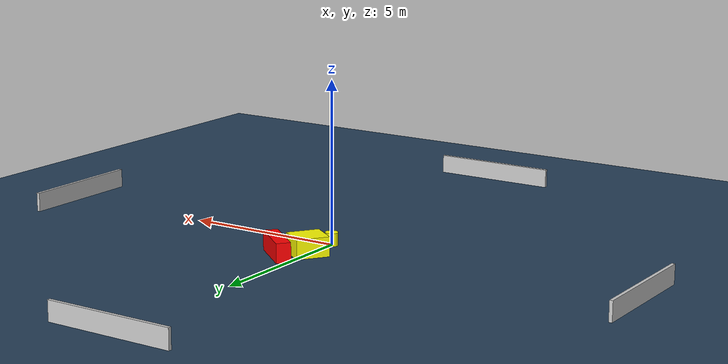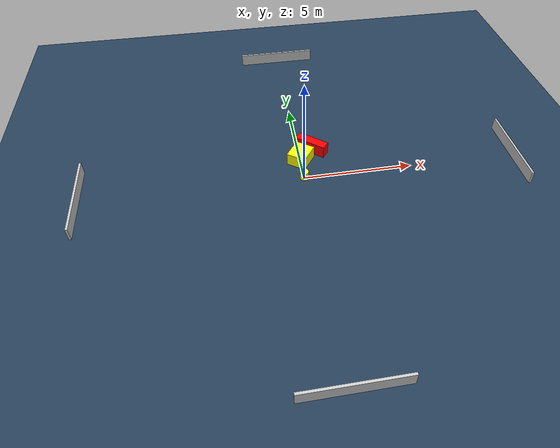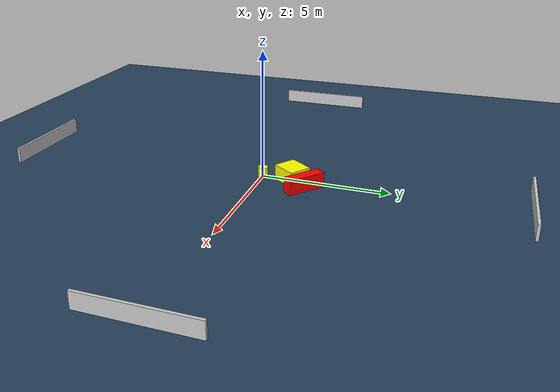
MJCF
<?xml version="1.0" ?>
<mujoco model="generated_environment">
  <option timestep="0.01" integrator="RK4" cone="elliptic"/>
  <default>
    <geom density="1"/>
  </default>
  <asset>
    <texture builtin="gradient" height="3072" name="skybox" rgb1="0.3 0.5 0.7" rgb2="0 0 0" type="skybox" width="512"/>
    <texture builtin="checker" height="300" name="groundplane" rgb1="0.2 0.3 0.4" rgb2="0.1 0.2 0.3" type="2d" width="300"/>
    <material name="groundplane" reflectance="0.2" texrepeat="5 5" texture="groundplane"/>
  </asset>
  <worldbody>
    <light dir="0 0 -1" directional="true" pos="0 0 1.5"/>
    <geom condim="3" friction="0.5 0.005 0.001" material="groundplane" name="floor" pos="0 0 0" size="0 0 0.05" type="plane"/>
    <body name="walls">
      <geom name="wall_1" condim="4" pos="-10.0 0.0 0.3" rgba="0.800000011920929 0.800000011920929 0.800000011920929 1.0" size="0.05 2.0 0.3" type="box"/>
      <geom name="wall_2" condim="4" pos="10.0 0.0 0.3" rgba="0.800000011920929 0.800000011920929 0.800000011920929 1.0" size="0.05 2.0 0.3" type="box"/>
      <geom name="wall_3" condim="4" pos="0.0 -10.0 0.3" rgba="0.800000011920929 0.800000011920929 0.800000011920929 1.0" size="2.0 0.05 0.3" type="box"/>
      <geom name="wall_4" condim="4" pos="0.0 10.0 0.3" rgba="0.800000011920929 0.800000011920929 0.800000011920929 1.0" size="2.0 0.05 0.3" type="box"/>
    </body>
    <body name="robot">
      <joint name="joint_x" type="slide" pos="0 0 0" axis="1 0 0"/>
      <joint name="joint_y" type="slide" pos="0 0 0" axis="0 1 0"/>
      <geom name="robot" type="cylinder" pos="0.0 0.0 0.2" size="0.2 0.2 0.0" mass="5.0" friction="1.0 0.005 0.0001" condim="4" rgba="1.0 1.0 0.0 1.0"/>
    </body>
    <body name="obstacle_1_movable">
      <geom name="obstacle_1_movable" condim="4" pos="0.023678835833712872 1.2051673199489694 0.3" euler="0 0 234.70013819786456" friction="0.0 0.005 0.001" rgba="1.0 1.0 0.0 1.0" size="0.5107167041951854 0.45697036778473993 0.3" type="box" mass="0.1"/>
      <joint type="free"/>
    </body>
    <body name="obstacle_2_static">
      <geom name="obstacle_2_static" condim="4" pos="0.6624704710472823 1.8646936834198558 0.3" euler="0 0 140.10116588367012" friction="0.0 0.005 0.001" rgba="1.0 0.0 0.0 1.0" size="0.7633097674232054 0.221182397361317 0.3" type="box"/>
    </body>
  </worldbody>
  <actuator>
    <motor name="actuator_x" joint="joint_x" gear="1" ctrlrange="-1 1"/>
    <motor name="actuator_y" joint="joint_y" gear="1" ctrlrange="-1 1"/>
  </actuator>
</mujoco>
